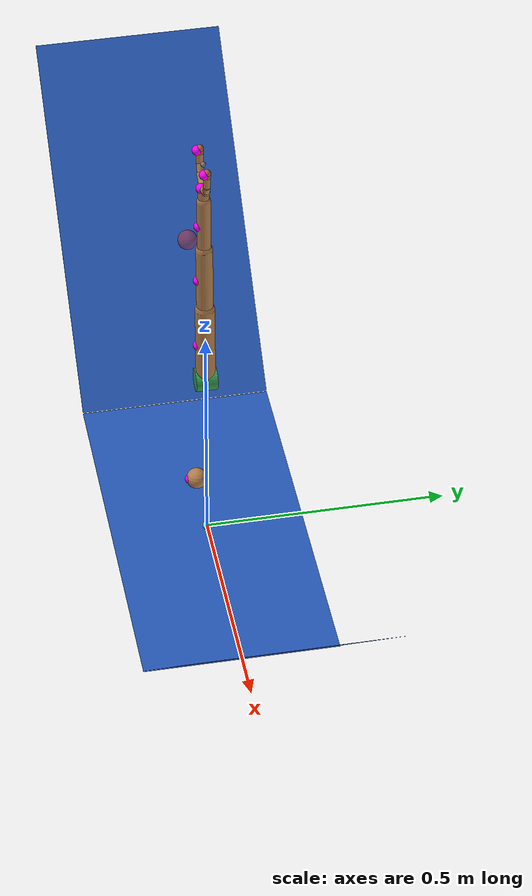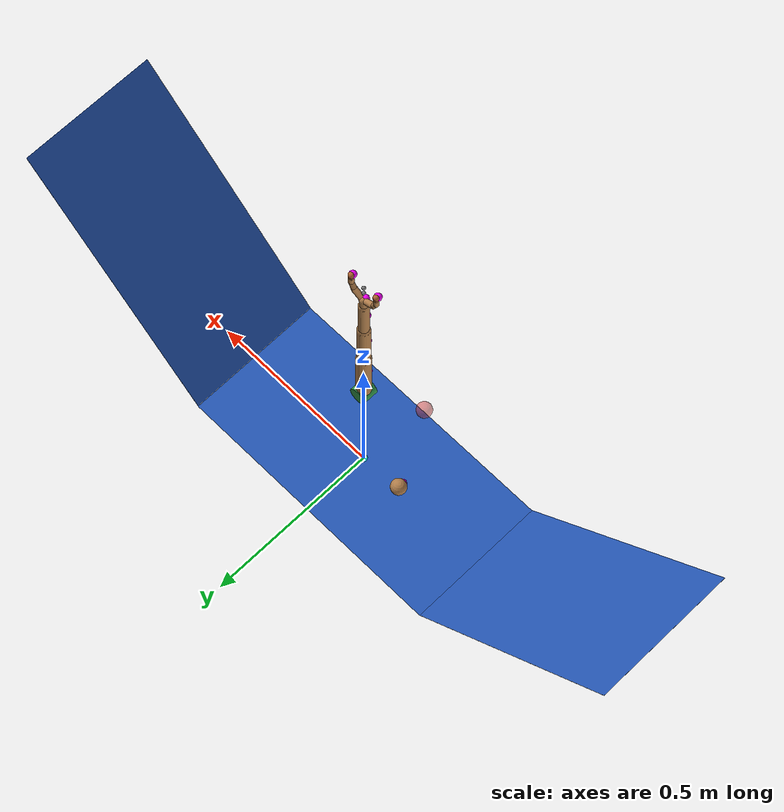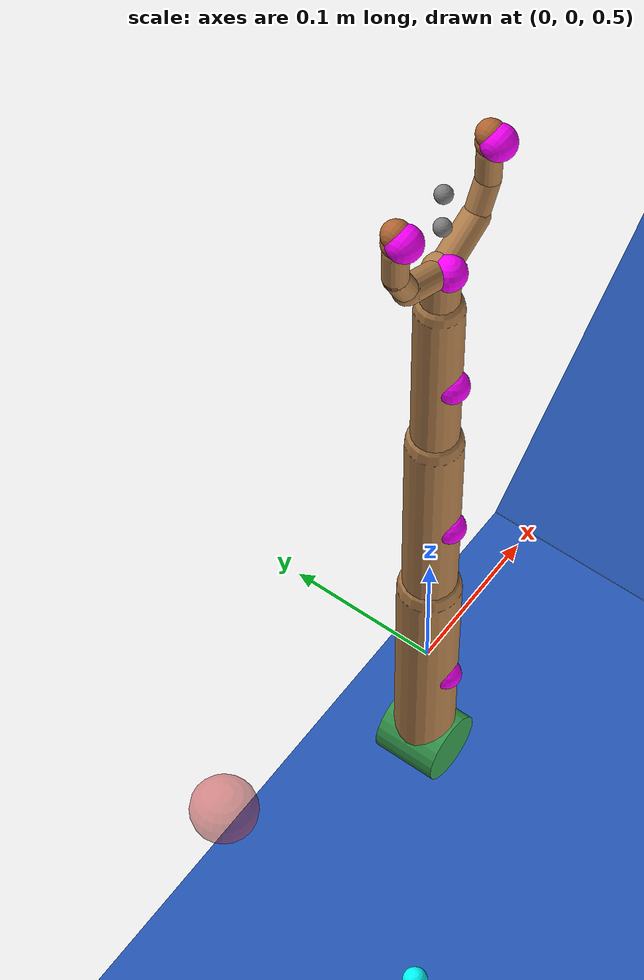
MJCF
<mujoco model="manipulator ball task">
  <include file="../common.xml"/>
  <include file="manipulator.xml" />

  <size memory="100K"/>

  <custom>
    <!-- agent -->
    <numeric name="agent_planner" data="0" />
    <numeric name="agent_horizon" data="0.75" />
    <numeric name="agent_timestep" data="0.005" />
    <numeric name="agent_sample_width" data="0.001" />
    <numeric name="agent_policy_width" data="0.0015" />
    <numeric name="sampling_spline_points" data="5" />
    <numeric name="sampling_exploration" data="0.1" />
    <numeric name="gradient_spline_points" data="10" />

    <!-- estimator -->
    <numeric name="estimator" data="0" />
    <numeric name="estimator_sensor_start" data="4" />
    <numeric name="estimator_number_sensor" data="7" />
  </custom>

  <sensor>
    <!-- cost -->
    <user name="Grasp" needstage="acc" dim="2" user="6 10.0 0 100.0 1.0e-6"/>
    <user name="Close" needstage="acc" dim="1" user="6 10.0 0 100.0 1.0e-6"/>
    <user name="Bring" needstage="acc" dim="2" user="6 10.0 0 100.0 1e-2"/>
    <user name="Control" needstage="acc" dim="4" user="3 0.0001 0.0 0.001 0.3"/>

    <!-- estimator -->
    <framepos name="ball" objtype="site" objname="ball"/>
    <framepos name="upper_arm_site" objtype="site" objname="upper_arm_site" />
    <framepos name="middle_arm_site" objtype="site" objname="middle_arm_site" />
    <framepos name="lower_arm_site" objtype="site" objname="lower_arm_site" />
    <framepos name="wrist_site" objtype="site" objname="wrist_site" />
    <framepos name="thumbtip_site" objtype="site" objname="thumbtip_site" />
    <framepos name="fingertip_site" objtype="site" objname="fingertip_site" />

    <!-- residual -->
    <!-- Sphere sensors. -->
    <framepos name="ball_pos" objtype="site" objname="ball"/>
    <!-- Manipulator sensors. -->
    <framepos name="grasp_pos" objtype="site" objname="grasp"/>
    <framepos name="pinch_pos" objtype="site" objname="pinch"/>
    <tendonpos name="grasp" tendon="grasp"/>

    <!-- trace -->
    <framepos name="trace0" objtype="site" objname="grasp"/>
  </sensor>

  <worldbody>
    <!-- ball -->
    <body name="ball" pos="-.125 0 .022" childclass="object">
      <joint name="ball_x" type="slide" axis="1 0 0" ref="-.124"/>
      <joint name="ball_z" type="slide" axis="0 0 1" ref=".022"/>
      <geom  name="ball" type="sphere" size=".022" />
      <site  name="ball" type="sphere" rgba="1 0 1 1" size="0.01" pos="0 -0.015 0"  />
    </body>

    <!-- target ball position -->
    <body name="debug_target" mocap="true" pos="-0.2 0 0.6">
      <geom type="sphere" size="0.02" rgba="0.8 0.2 0.2 0.5" contype="0" conaffinity="0"/>
    </body>

    <!-- mocap for position sensor visualization -->
    <body name="mocap_ball" mocap="true">
      <geom type="sphere" size="0.01" rgba="0 1 1 1" contype="0" conaffinity="0"/>
    </body>
    <body name="mocap_upper_arm" mocap="true">
      <geom type="sphere" size="0.01" rgba="0 1 1 1" contype="0" conaffinity="0"/>
    </body>
    <body name="mocap_middle_arm" mocap="true">
      <geom type="sphere" size="0.01" rgba="0 1 1 1" contype="0" conaffinity="0"/>
    </body>
    <body name="mocap_lower_arm" mocap="true">
      <geom type="sphere" size="0.01" rgba="0 1 1 1" contype="0" conaffinity="0"/>
    </body>
    <body name="mocap_wrist" mocap="true">
      <geom type="sphere" size="0.01" rgba="0 1 1 1" contype="0" conaffinity="0"/>
    </body>
    <body name="mocap_thumbtip" mocap="true">
      <geom type="sphere" size="0.01" rgba="0 1 1 1" contype="0" conaffinity="0"/>
    </body>
    <body name="mocap_fingertip" mocap="true">
      <geom type="sphere" size="0.01" rgba="0 1 1 1" contype="0" conaffinity="0"/>
    </body>
  </worldbody>
</mujoco>

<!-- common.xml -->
<mujoco>

  <visual>
    <headlight ambient=".4 .4 .4" diffuse=".8 .8 .8" specular="0.1 0.1 0.1"/>
    <map znear=".01"/>
    <quality shadowsize="2048"/>
    <global elevation="-15"/>
  </visual>

  <asset>
    <texture name="blue_grid" type="2d" builtin="checker" rgb1=".02 .14 .44" rgb2=".27 .55 1" width="300" height="300" mark="edge" markrgb="1 1 1"/>
    <material name="blue_grid" texture="blue_grid" texrepeat="1 1" texuniform="true" reflectance=".2"/>

    <texture name="grey_grid" type="2d" builtin="checker" rgb1=".26 .26 .26" rgb2=".6 .6 .6" width="300" height="300" mark="edge" markrgb="1 1 1"/>
    <material name="grey_grid" texture="grey_grid" texrepeat="1 1" texuniform="true" reflectance=".2"/>
    <texture name="skybox" type="skybox" builtin="gradient" rgb1=".66 .79 1" rgb2=".9 .91 .93" width="800" height="800"/>

    <material name="self" rgba=".7 .5 .3 1"/>
    <material name="self_default" rgba=".7 .5 .3 1"/>
    <material name="self_highlight" rgba="0 .5 .3 1"/>
    <material name="effector" rgba=".7 .4 .2 1"/>
    <material name="effector_default" rgba=".7 .4 .2 1"/>
    <material name="effector_highlight" rgba="0 .5 .3 1"/>
    <material name="decoration" rgba=".2 .6 .3 1"/>
    <material name="eye" rgba="0 .2 1 1"/>
    <material name="target" rgba=".6 .3 .3 1"/>
    <material name="target_default" rgba=".6 .3 .3 1"/>
    <material name="target_highlight" rgba=".6 .3 .3 .4"/>
    <material name="site" rgba=".5 .5 .5 .3"/>
  </asset>
</mujoco>

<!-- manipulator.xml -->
<mujoco model="Planar Manipulator">
  <asset>
    <texture name="background" builtin="flat" type="2d" mark="random" markrgb="1 1 1" width="800" height="800" rgb1=".2 .3 .4"/>
    <material name="background" texture="background" texrepeat="1 1" texuniform="true"/>
  </asset>

  <visual>
    <map shadowclip=".5"/>
    <quality shadowsize="2048"/>
    <global fovy="27" offwidth="1920" offheight="1080"/>
  </visual>>

  <option cone="elliptic" timestep="0.005"/>

  <default>
    <geom friction=".7" solimp="0.9 0.97 0.001" solref=".005 1"/>
    <joint solimplimit="0 0.99 0.01" solreflimit=".005 1"/>
    <general ctrllimited="true"/>
    <tendon width="0.01"/>
    <default class="arm">
      <geom type="capsule" material="self" density="500"/>
      <joint type="hinge" pos="0 0 0" axis="0 -1 0" limited="true"/>
      <default class="hand">
        <joint damping=".5" range="-10 60"/>
        <geom size=".008"/>
        <default class="fingertip">
          <geom type="sphere" size=".008" material="effector"/>
          <joint damping=".01" stiffness=".01" range="-40 20"/>
        </default>
      </default>
    </default>
    <default class="object">
      <geom material="self"/>
    </default>
    <default class="task">
      <site rgba="0 0 0 0"/>
    </default>
    <default class="obstacle">
      <geom material="decoration" friction="0"/>
    </default>
    <default class="ghost">
      <geom material="target" contype="0" conaffinity="0"/>
    </default>
  </default>

  <worldbody>
    <!-- Arena -->
    <light name="light" directional="true" diffuse=".6 .6 .6" pos="0 0 1" specular=".3 .3 .3"/>
    <geom name="floor" type="plane" pos="0 0 0" size=".4 .2 10" material="blue_grid"/>
    <geom name="wall1" type="plane" pos="-.682843 0 .282843" size=".4 .2 10" material="blue_grid" zaxis="1 0 1"/>
    <geom name="wall2" type="plane" pos=".682843 0 .282843" size=".4 .2 10" material="blue_grid" zaxis="-1 0 1"/>

    <!-- Arm -->
    <geom name="arm_root" type="cylinder" fromto="0 -.022 .4 0 .022 .4" size=".024"
          material="decoration" contype="0" conaffinity="0"/>
    <body name="upper_arm" pos="0 0 .4" childclass="arm">
      <joint name="arm_root" damping="2" limited="false"/>
      <geom  name="upper_arm"  size=".02" fromto="0 0 0 0 0 .18"/>
      <site name="upper_arm_site" rgba="1 0 1 1" type="sphere" size="0.01" pos="0 -0.015 0.09" />
      <body  name="middle_arm" pos="0 0 .18" childclass="arm">
        <joint name="arm_shoulder" damping="1.5" range="-160 160"/>
        <geom  name="middle_arm"  size=".017" fromto="0 0 0 0 0 .15"/>
        <site name="middle_arm_site" rgba="1 0 1 1" type="sphere" size="0.01" pos="0 -0.0125 0.075" />
        <body  name="lower_arm" pos="0 0 .15">
          <joint name="arm_elbow" damping="1" range="-160 160"/>
          <geom  name="lower_arm" size=".014" fromto="0 0 0 0 0 .12"/>
          <site name="lower_arm_site" rgba="1 0 1 1" type="sphere" size="0.01" pos="0 -0.01 0.06" />
          <body  name="hand" pos="0 0 .12">
            <joint name="arm_wrist" damping=".5" range="-140 140" />
            <geom  name="hand" size=".011" fromto="0 0 0 0 0 .03"/>
            <geom  name="palm1"  fromto="0 0 .03  .03 0 .045" class="hand"/>
            <geom  name="palm2"  fromto="0 0 .03 -.03 0 .045" class="hand"/>
            <site  name="grasp" pos="0 0 .065" />
            <site  name="wrist_site" rgba="1 0 1 1" type="sphere" size="0.01" pos="0 -0.005 0.0325" />
            <body  name="pinch site" pos="0 0 .090">
              <site  name="pinch"/>
              <inertial pos="0 0 0" mass="1e-6" diaginertia="1e-12 1e-12 1e-12"/>
              <camera name="hand" pos="0 -.3 0" xyaxes="1 0 0 0 0 1" mode="track"/>
            </body>
            <site  name="palm_touch" type="box" group="4" size=".025 .005 .008" pos="0 0 .043"/>
            <body name="thumb" pos=".03 0 .045" euler="0 -90 0" childclass="hand">
              <joint name="thumb"/>
              <geom  name="thumb1"  fromto="0 0 0 .02 0 -.01" size=".007"/>
              <geom  name="thumb2"  fromto=".02 0 -.01 .04 0 -.01" size=".007"/>
              <site  name="thumb_touch" group="4"/>
              <body  name="thumbtip" pos=".05 0 -.01" childclass="fingertip">
                <joint name="thumbtip"/>
                <geom  name="thumbtip1" pos="-.003 0 0" />
                <geom  name="thumbtip2" pos=".003 0 0" />
                <site  name="thumbtip_touch" group="4"/>
                <site  name="thumbtip_site" rgba="1 0 1 1" type="sphere" size="0.01" pos="0 -0.005 0"/>
              </body>
            </body>
            <body name="finger" pos="-.03 0 .045" euler="0 90 180" childclass="hand">
              <joint name="finger"/>
              <geom  name="finger1"  fromto="0 0 0 .02 0 -.01" size=".007" />
              <geom  name="finger2"  fromto=".02 0 -.01 .04 0 -.01" size=".007"/>
              <site  name="finger_touch"/>
              <body  name="fingertip" pos=".05 0 -.01" childclass="fingertip">
                <joint name="fingertip"/>
                <geom  name="fingertip1" pos="-.003 0 0" />
                <geom  name="fingertip2" pos=".003 0 0" />
                <site  name="fingertip_touch" group="4" />
                <site  name="fingertip_site" rgba="1 0 1 1" type="sphere" size="0.01" pos="0 0.005 0" />
              </body>
            </body>
          </body>
        </body>
      </body>
    </body>
  </worldbody>

  <tendon>
    <fixed name="grasp">
      <joint joint="thumb"  coef=".5"/>
      <joint joint="finger" coef=".5"/>
    </fixed>
    <fixed name="coupling">
      <joint joint="thumb"  coef="-.5"/>
      <joint joint="finger" coef=".5"/>
    </fixed>
  </tendon>

  <equality>
    <tendon name="coupling" tendon1="coupling" solimp="0.95 0.99 0.001" solref=".005 .5"/>
  </equality>

  <actuator>
    <motor name="root"     joint="arm_root"     ctrlrange="-1 1"  gear="12"/>
    <motor name="shoulder" joint="arm_shoulder" ctrlrange="-1 1"  gear="8"/>
    <motor name="elbow"    joint="arm_elbow"    ctrlrange="-1 1"  gear="4"/>
    <motor name="wrist"    joint="arm_wrist"    ctrlrange="-1 1"  gear="2"/>
    <motor name="grasp"    tendon="grasp"       ctrlrange="-1 1"  gear="2"/>
  </actuator>
</mujoco>
